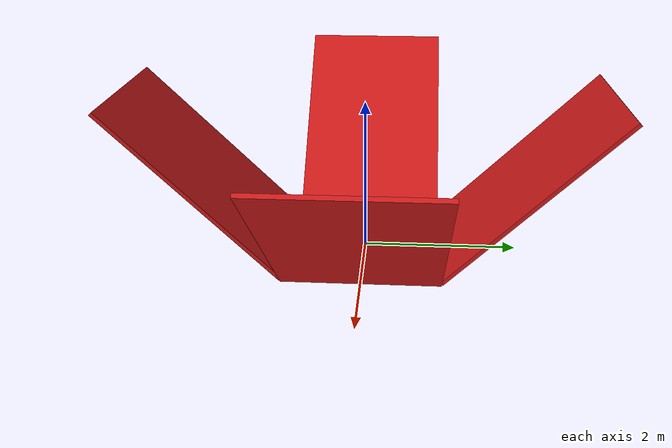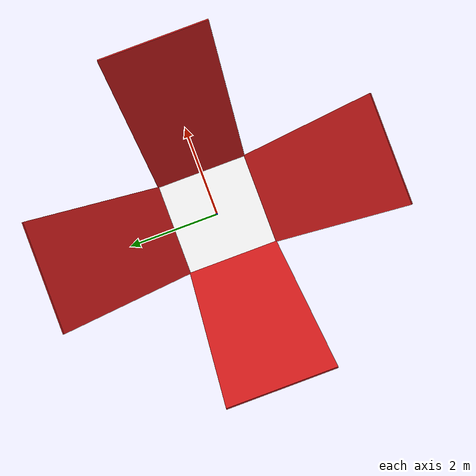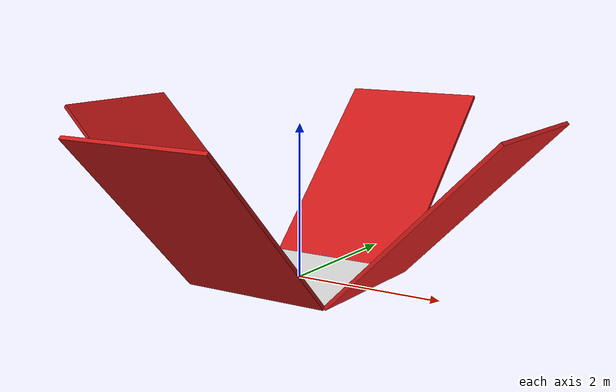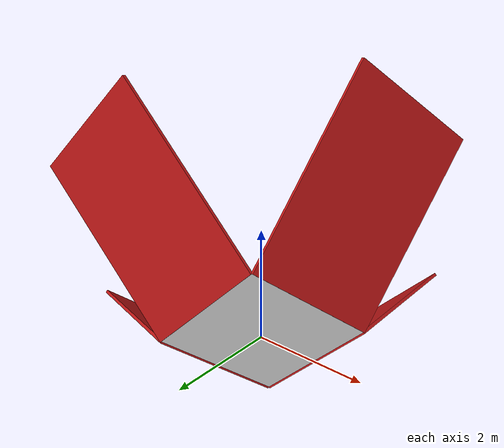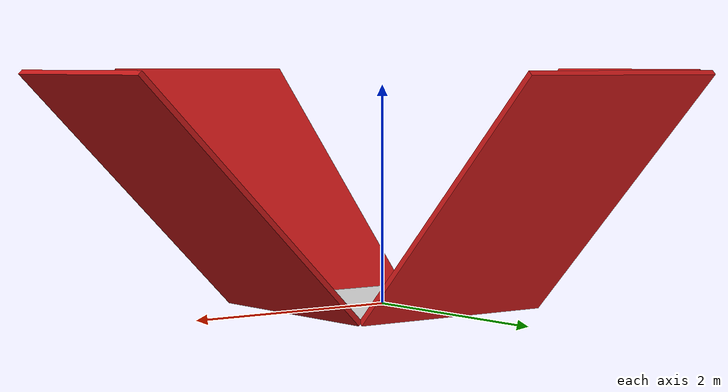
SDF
<?xml version="1.0" ?>
<sdf version="1.9">
  <model name="qr_pad_v1">
    <static>true</static>

    <link name="center_plate">
      <pose>0 0 0.01 0 0 0</pose>
      <visual name="visual">
        <geometry>
          <box>
            <size>2 2 0.02</size>
          </box>
        </geometry>
        <material>
          <ambient>1 1 1 1</ambient>
          <diffuse>1 1 1 1</diffuse>
          <pbr>
            <metal>
              <albedo_map>materials/textures/qr_code.png</albedo_map>
            </metal>
          </pbr>
        </material>
      </visual>
    </link>

    <link name="plate_north">
      <pose>2.06 0 1.06 0 -0.7854 0</pose>
      <visual name="visual">
        <geometry>
          <box><size>3 2 0.05</size></box>
        </geometry>
        <material><diffuse>0.8 0.1 0.1 1</diffuse></material>
      </visual>
    </link>

    <link name="plate_south">
      <pose>-2.06 0 1.06 0 0.7854 0</pose>
      <visual name="visual">
        <geometry>
          <box><size>3 2 0.05</size></box>
        </geometry>
        <material><diffuse>0.8 0.1 0.1 1</diffuse></material>
      </visual>
    </link>

    <link name="plate_east">
      <pose>0 2.06 1.06 0.7854 0 0</pose>
      <visual name="visual">
        <geometry>
          <box><size>2 3 0.05</size></box> </geometry>
        <material><diffuse>0.8 0.1 0.1 1</diffuse></material>
      </visual>
    </link>

    <link name="plate_west">
      <pose>0 -2.06 1.06 -0.7854 0 0</pose>
      <visual name="visual">
        <geometry>
          <box><size>2 3 0.05</size></box>
        </geometry>
        <material><diffuse>0.8 0.1 0.1 1</diffuse></material>
      </visual>
    </link>

  </model>
</sdf>
